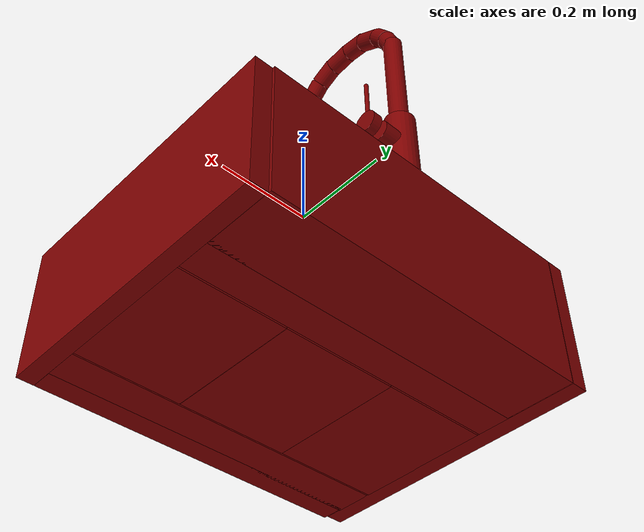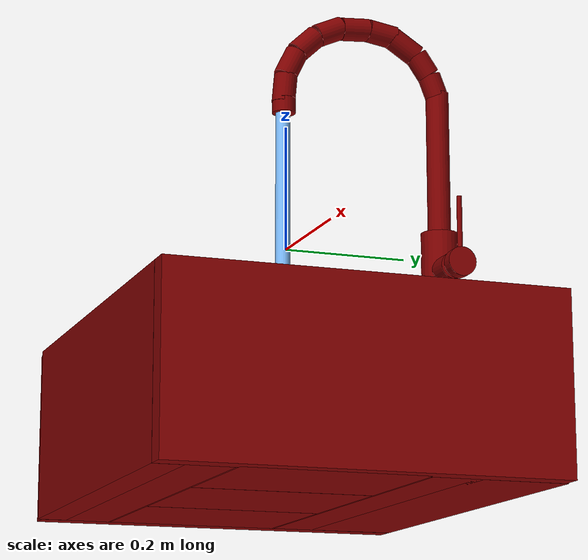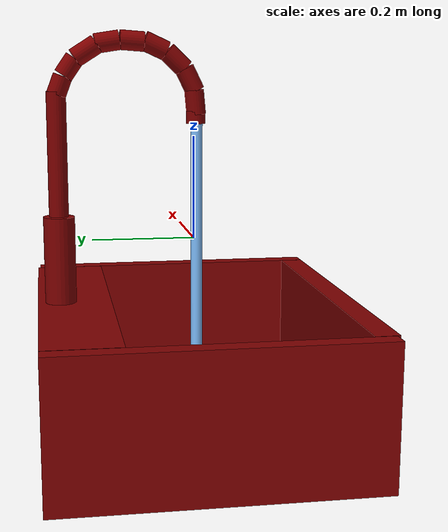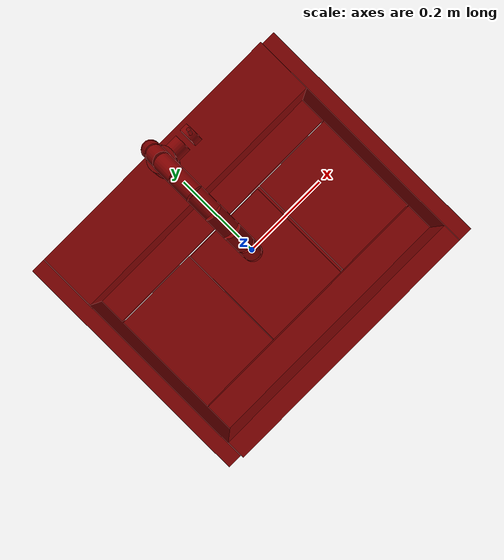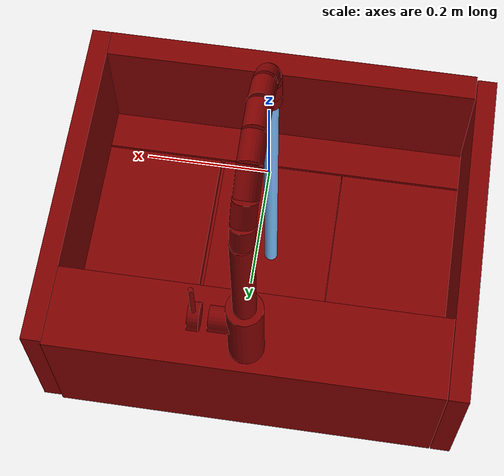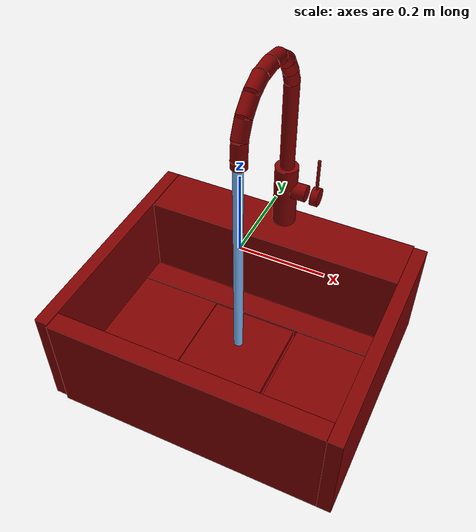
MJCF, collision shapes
<mujoco model="model">
  <compiler angle="radian"/>
  <asset>
    <mesh file="visuals/handle.obj" name="handle_vis"/>
    <mesh file="visuals/Body001.obj" name="Body001_vis"/>
    <mesh file="visuals/Funnel001.obj" name="Funnel001_vis"/>
    <mesh file="visuals/spout.obj" name="spout_vis"/>
    <texture file="visuals/T_BC001.png" name="Body001_material" type="2d"/>
    <material name="Body001_material" rgba="1 1 1 1.0" texture="Body001_material" shininess="0.141421377658844" specular="0.3103448502657381"/>
    <texture file="visuals/T_BC001.png" name="handle_material" type="2d"/>
    <material name="handle_material" rgba="1 1 1 1.0" texture="handle_material" shininess="0.141421377658844" specular="0.3103448502657381"/>
    <texture file="visuals/T_BC001.png" name="Funnel001_material" type="2d"/>
    <material name="Funnel001_material" rgba="1 1 1 1.0" texture="Funnel001_material" shininess="0.141421377658844" specular="0.3103448502657381"/>
    <texture file="visuals/T_BC001.png" name="spout_material" type="2d"/>
    <material name="spout_material" rgba="1 1 1 1.0" texture="spout_material" shininess="0.141421377658844" specular="0.3103448502657381"/>
  </asset>
  <default>
    <default class="visual">
      <geom conaffinity="0" contype="0" group="1" type="mesh"/>
    </default>
    <default class="collision">
      <geom group="0" rgba="0.5 0 0 0.5"/>
    </default>
    <default class="spawn">
      <geom group="0" rgba="1 1 1 0.5" contype="0" conaffinity="0"/>
      <site group="0" rgba="1 1 1 0.5"/>
    </default>
    <default class="region">
      <geom group="1" conaffinity="0" contype="0" rgba="0 1 0 0"/>
    </default>
  </default>
  <worldbody>
    <body>
      <body name="object">
        <geom mesh="Body001_vis" type="mesh" solimp="0.998 0.998 0.001" solref="0.001 1" density="100" friction="0.95 0.3 0.1" class="visual" material="Body001_material"/>
        <geom class="collision" type="box" pos="-0.35472372174263 0.003450560849159956 -0.2585802674293518" size="0.017459595575928688 0.30458343029022217 0.13868075609207153" quat="1.0 0.0 0.0 0.0"/>
        <geom class="collision" type="box" pos="0.354698121547699 -0.002510946709662676 -0.2585802674293518" size="0.01739576645195484 0.3055230379104614 0.13868075609207153" quat="1.0 0.0 0.0 0.0"/>
        <geom class="collision" type="box" pos="-0.0007268190383911133 -0.22849918901920319 -0.36672431230545044" size="0.33796435594558716 0.038684990257024765 0.03053669072687626" quat="1.0 0.0 0.0 0.0"/>
        <geom class="collision" type="box" pos="0.0005569830536842346 0.23685310781002045 -0.2585802674293518" size="0.3362390995025635 0.07118088752031326 0.13868075609207153" quat="1.0 0.0 0.0 0.0"/>
        <geom class="collision" type="box" pos="0.0005569830536842346 -0.28473401069641113 -0.2585802674293518" size="0.3362390995025635 0.02329997718334198 0.13868075609207153" quat="1.0 0.0 0.0 0.0"/>
        <geom class="collision" type="cylinder" pos="0.0 0.26357266306877136 -0.0357801653444767" size="0.030178183689713478 0.08440031111240387" quat="1.0 0.0 0.0 0.0"/>
        <geom class="collision" type="cylinder" pos="0.0381937175989151 0.26223665475845337 -0.016653666272759438" size="0.021399369463324547 0.019612431526184082" quat="0.5000000596046448 0.5 0.4999999701976776 0.5"/>
        <geom class="collision" type="box" pos="-0.0007268190383911133 0.1367899626493454 -0.36672431230545044" size="0.33796435594558716 0.038684990257024765 0.03053669072687626" quat="1.0 0.0 0.0 0.0"/>
        <geom class="collision" type="box" pos="-0.22707338631153107 -0.046030193567276 -0.36672431230545044" size="0.1116178035736084 0.14057162404060364 0.03053669072687626" quat="1.0 0.0 0.0 0.0"/>
        <geom class="collision" type="box" pos="0.23310363292694092 -0.046030193567276 -0.36672431230545044" size="0.11229205131530762 0.14057162404060364 0.03053669072687626" quat="1.0 0.0 0.0 0.0"/>
        <geom class="collision" type="box" pos="0.002433479530736804 -0.046030193567276 -0.37644317746162415" size="0.1174427941441536 0.14057162404060364 0.020817838609218597" quat="1.0 0.0 0.0 0.0"/>
        <body name="handle">
          <joint axis="1.0 0.0 0.0" pos="0.08304321765899658 0.26247984170913696 -0.01761959306895733" limited="true" name="handle_joint_hinge_0" type="hinge" range="-0.7853981633974483 0.7853981633974483" damping="1" frictionloss="1" armature=".01" stiffness="0.05"/>
          <joint axis="0.0 1.0 0.0" pos="0.08304321765899658 0.26247984170913696 -0.01761959306895733" limited="true" name="handle_joint_hinge_1" type="hinge" range="0.0 0.17453292519943295" damping="1" frictionloss="1" armature=".01" stiffness="0.05"/>
          <geom mesh="handle_vis" type="mesh" solimp="0.998 0.998 0.001" solref="0.001 1" density="100" friction="0.95 0.3 0.1" class="visual" material="handle_material"/>
          <geom class="collision" type="cylinder" pos="0.08161629736423492 0.26223665475845337 -0.017258981242775917" size="0.02353030815720558 0.009531225077807903" quat="0.5000000596046448 0.5 0.4999999701976776 0.5"/>
          <geom class="collision" type="cylinder" pos="0.08213990181684494 0.26221564412117004 0.04712838679552078" size="0.004157292190939188 0.04314939305186272" quat="5.338507946817117e-08 0.7071068286895752 0.7071067690849304 5.338507591545749e-08"/>
        </body>
        <body name="Funnel001">
          <joint axis="0.0 0.0 1.0" pos="-0.00029741227626800537 -0.047115691006183624 -0.34338676929473877" limited="true" name="Funnel001_joint" range="0.0 0.1" type="slide" damping="1" frictionloss="1" armature=".01" stiffness="0.05"/>
          <geom mesh="Funnel001_vis" type="mesh" solimp="0.998 0.998 0.001" solref="0.001 1" density="100" friction="0.95 0.3 0.1" class="visual" material="Funnel001_material"/>
          <geom class="collision" type="box" pos="-0.0006947148940525949 -0.047130558639764786 -0.34264999628067017" size="0.11300185322761536 0.13947126269340515 0.006462354678660631" quat="1.0 0.0 0.0 0.0"/>
        </body>
        <body name="spout">
          <joint axis="0.0 0.0 1.0" pos="-0.00023473729379475117 0.26321130990982056 0.22852367162704468" limited="true" name="spout_joint" range="-1.0471975511965976 1.0471975511965976" type="hinge" damping="1" frictionloss="1" armature=".01" stiffness="0.05"/>
          <site type="cylinder" rgba="0.5 0.75 1 1" size="0.011609294451773167 0.2936442196369171" pos="-0.00281657837331295 -0.004005800001323223 -0.05401162803173065" name="water"/>
          <geom mesh="spout_vis" type="mesh" solimp="0.998 0.998 0.001" solref="0.001 1" density="100" friction="0.95 0.3 0.1" class="visual" material="spout_material"/>
          <geom class="collision" type="cylinder" pos="0.0 0.26357266306877136 0.16798046231269836" size="0.01867983676493168 0.11879255622625351" quat="1.0 0.0 0.0 0.0"/>
          <geom class="collision" type="cylinder" pos="-9.729896416431587e-18 0.23791363835334778 0.3319263160228729" size="0.01867983676493168 0.019234102219343185" quat="0.9550366401672363 0.29648780822753906 -7.311360098850056e-17 7.311360098850056e-17"/>
          <geom class="collision" type="cylinder" pos="-0.001114597893320024 0.16607455909252167 0.37831246852874756" size="0.01867983676493168 0.023211244493722916" quat="0.6504695415496826 -0.7595323324203491 -1.6865005668006397e-16 -5.628278406301753e-24"/>
          <geom class="collision" type="cylinder" pos="-6.0354604737666124e-18 0.2563072741031647 0.2980877757072449" size="0.01867983676493168 0.018054183572530746" quat="0.9834555983543396 0.18114939332008362 -2.589090371978125e-17 8.142349050943278e-18"/>
          <geom class="collision" type="cylinder" pos="-0.001114597893320024 0.20655250549316406 0.36085188388824463" size="0.01867983676493168 0.024418875575065613" quat="0.48208555579185486 -0.8761241436004639 -1.4639573506372512e-16 -4.6039526244664284e-17"/>
          <geom class="collision" type="cylinder" pos="-0.001114597893320024 0.11912503838539124 0.3805089592933655" size="0.01867983676493168 0.023211244493722916" quat="0.7335634827613831 -0.6796209216117859 -1.5090617227296447e-16 -9.249887940643032e-24"/>
          <geom class="collision" type="cylinder" pos="-0.001114597893320024 0.07492110133171082 0.3711739778518677" size="0.01867983676493168 0.023211244493722916" quat="0.8416051268577576 -0.5400933027267456 -1.1992480402661556e-16 -1.922622211168599e-23"/>
          <geom class="collision" type="cylinder" pos="-0.001114597893320024 0.035384662449359894 0.3445417881011963" size="0.01867983676493168 0.023211244493722916" quat="0.919505774974823 -0.3930765390396118 -8.728052481634925e-17 -1.5388194504454115e-23"/>
          <geom class="collision" type="cylinder" pos="-0.001114597893320024 0.00875491090118885 0.307545930147171" size="0.01867983676493168 0.023211244493722916" quat="0.9744263291358948 -0.22470726072788239 -4.98950382408311e-17 -1.1878729041968603e-23"/>
          <geom class="collision" type="cylinder" pos="-0.001114597893320024 -0.0015410357154905796 0.2650274634361267" size="0.01867983676493168 0.023211244493722916" quat="0.9989654421806335 -0.04547513648867607 -1.0097504579636891e-17 -1.2374663016114802e-23"/>
          <geom class="collision" type="cylinder" pos="-0.000953328562900424 -0.002737293252721429 0.23661890625953674" size="0.01867983676493168 0.012093055993318558" quat="1.0 0.0 0.0 0.0"/>
        </body>
        <geom class="region" name="reg_main" type="box" pos="0.0 -1.4901161193847656e-08 -0.2585802674293518" size="0.37218332290649414 0.3080340027809143 0.13868075609207153"/>
        <geom class="region" name="reg_basin" type="box" pos="0.001467868685722351 -0.048853710293769836 -0.22739652544260025" size="0.3329167813062668 0.21601299941539764 0.10395880788564682"/>
      </body>
    </body>
  </worldbody>
  <actuator>
    <motor name="handle_joint_hinge_0_actuator" joint="handle_joint_hinge_0" gear="10"/>
    <motor name="handle_joint_hinge_1_actuator" joint="handle_joint_hinge_1" gear="10"/>
    <motor name="Funnel001_joint_actuator" joint="Funnel001_joint" gear="10"/>
    <motor name="spout_joint_actuator" joint="spout_joint" gear="10"/>
  </actuator>
</mujoco>
